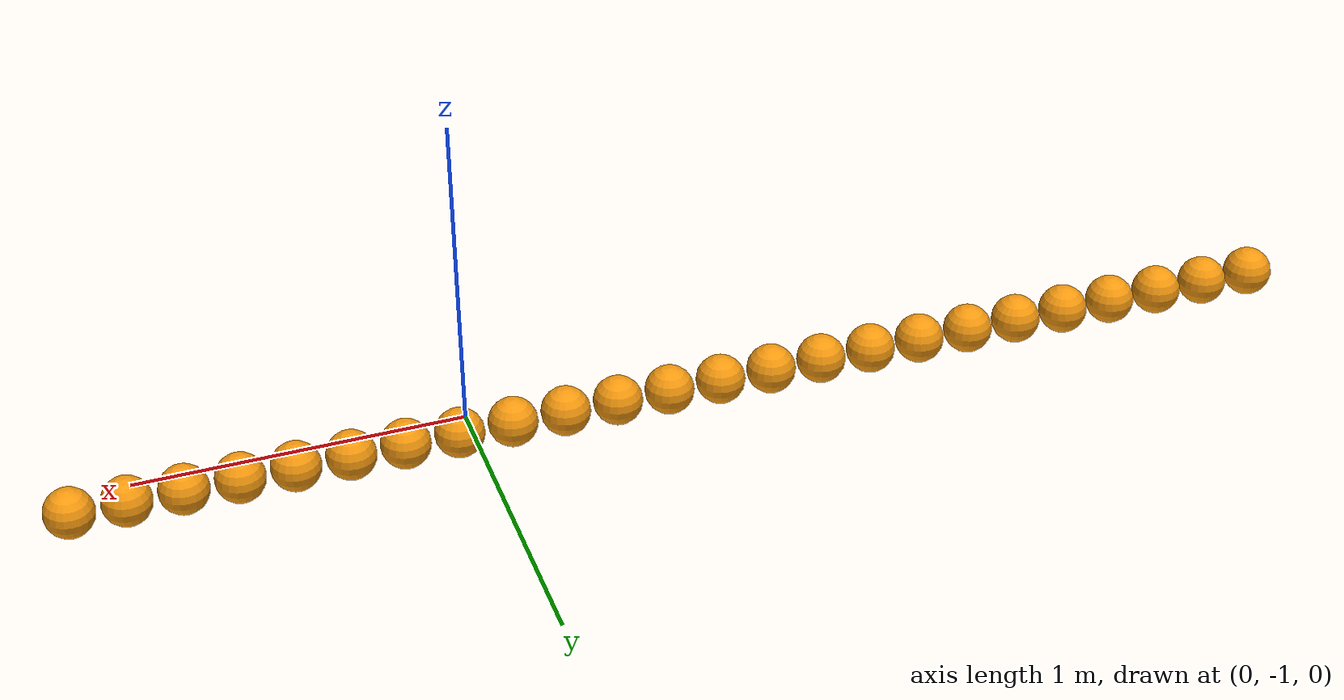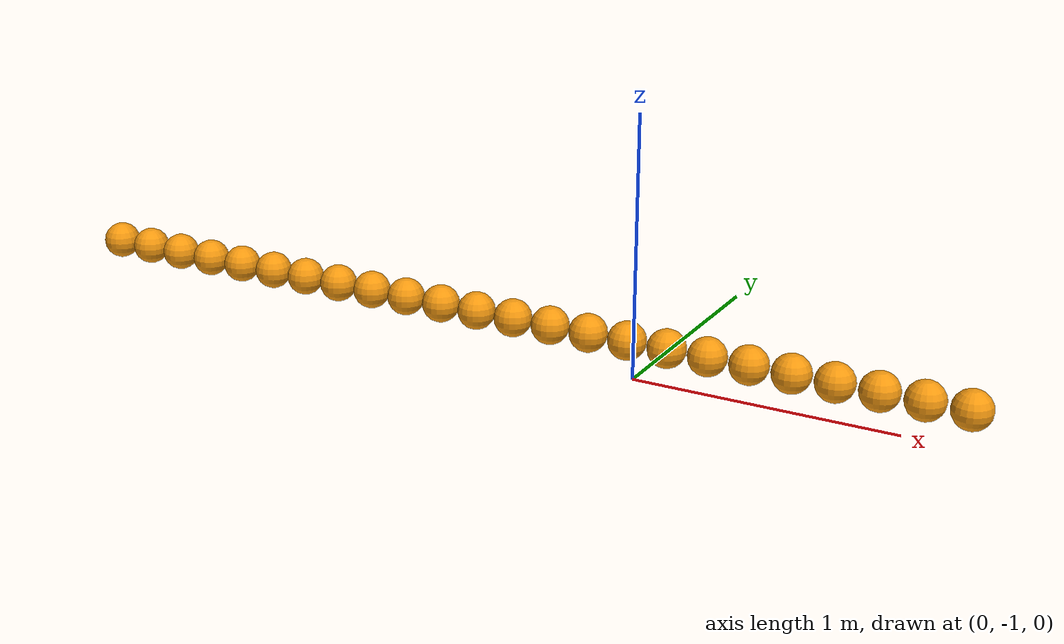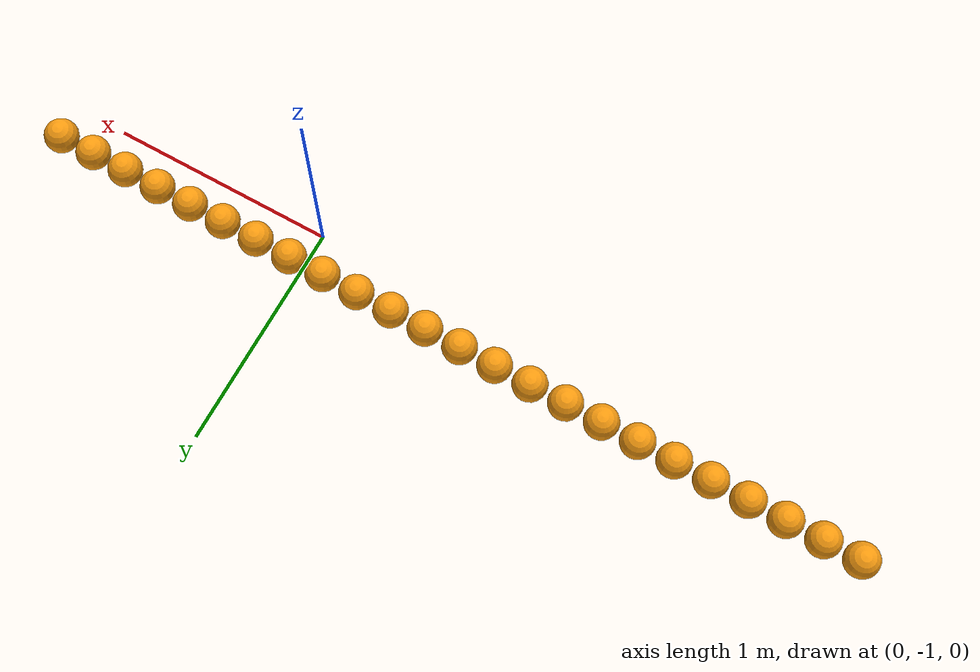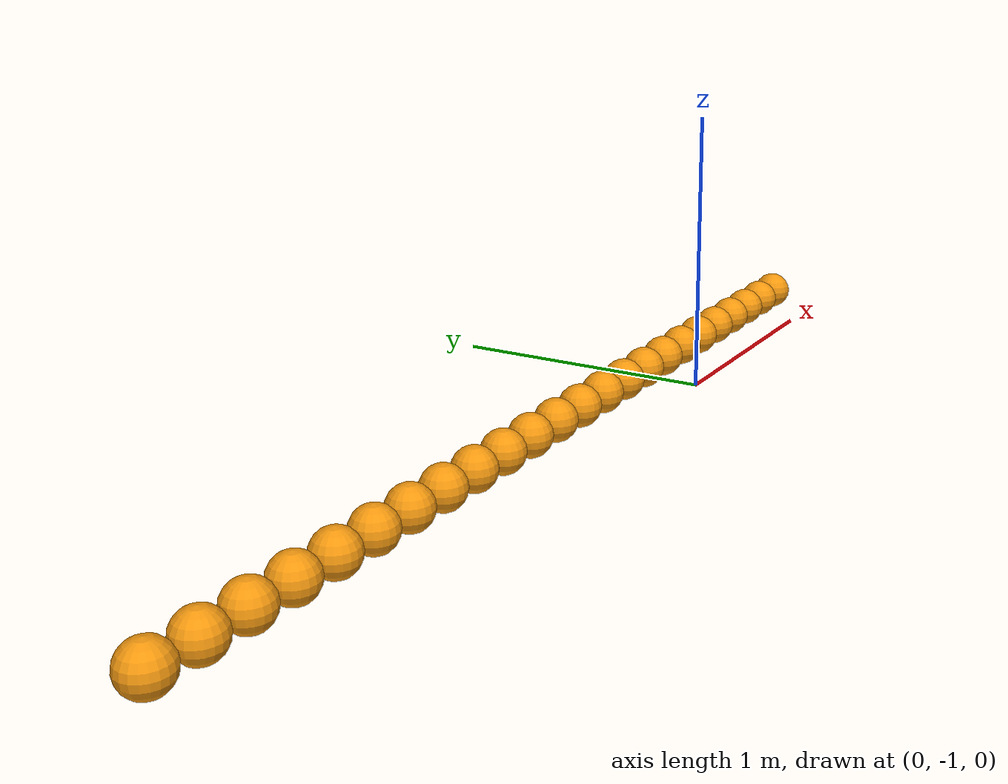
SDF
<?xml version="1.0" ?>
<sdf version="1.11">
  <world name="mars">
    <physics name="250hz" type="ignored">
      <max_step_size>0.004</max_step_size><real_time_factor>0</real_time_factor>
    </physics>
    <plugin filename="gz-sim-physics-system" name="gz::sim::systems::Physics"/>
    <plugin filename="gz-sim-scene-broadcaster-system" name="gz::sim::systems::SceneBroadcaster"/>
    <gravity>0 0 -9.8</gravity>
    <light type="directional" name="sun"><pose>0 0 10 0 0 0</pose>
      <diffuse>0.8 0.8 0.8 1</diffuse><direction>-0.5 0.1 -0.9</direction></light>
    <model name="ground_plane"><static>true</static><link name="link">
      <collision name="collision"><geometry><plane><normal>0 0 1</normal></plane></geometry>
      <surface><friction><ode><mu>0.9</mu><mu2>0.9</mu2></ode></friction></surface></collision>
    </link></model>
    <include><uri>model://fuel</uri><name>fuel_0</name><pose>-2.5340 -0.8340 0.0750 0 0 0</pose></include>
    <include><uri>model://fuel</uri><name>fuel_1</name><pose>-2.3720 -0.8340 0.0750 0 0 0</pose></include>
    <include><uri>model://fuel</uri><name>fuel_2</name><pose>-2.2100 -0.8340 0.0750 0 0 0</pose></include>
    <include><uri>model://fuel</uri><name>fuel_3</name><pose>-2.0480 -0.8340 0.0750 0 0 0</pose></include>
    <include><uri>model://fuel</uri><name>fuel_4</name><pose>-1.8860 -0.8340 0.0750 0 0 0</pose></include>
    <include><uri>model://fuel</uri><name>fuel_5</name><pose>-1.7240 -0.8340 0.0750 0 0 0</pose></include>
    <include><uri>model://fuel</uri><name>fuel_6</name><pose>-1.5620 -0.8340 0.0750 0 0 0</pose></include>
    <include><uri>model://fuel</uri><name>fuel_7</name><pose>-1.4000 -0.8340 0.0750 0 0 0</pose></include>
    <include><uri>model://fuel</uri><name>fuel_8</name><pose>-1.2380 -0.8340 0.0750 0 0 0</pose></include>
    <include><uri>model://fuel</uri><name>fuel_9</name><pose>-1.0760 -0.8340 0.0750 0 0 0</pose></include>
    <include><uri>model://fuel</uri><name>fuel_10</name><pose>-0.9140 -0.8340 0.0750 0 0 0</pose></include>
    <include><uri>model://fuel</uri><name>fuel_11</name><pose>-0.7520 -0.8340 0.0750 0 0 0</pose></include>
    <include><uri>model://fuel</uri><name>fuel_12</name><pose>-0.5900 -0.8340 0.0750 0 0 0</pose></include>
    <include><uri>model://fuel</uri><name>fuel_13</name><pose>-0.4280 -0.8340 0.0750 0 0 0</pose></include>
    <include><uri>model://fuel</uri><name>fuel_14</name><pose>-0.2660 -0.8340 0.0750 0 0 0</pose></include>
    <include><uri>model://fuel</uri><name>fuel_15</name><pose>-0.1040 -0.8340 0.0750 0 0 0</pose></include>
    <include><uri>model://fuel</uri><name>fuel_16</name><pose>0.0580 -0.8340 0.0750 0 0 0</pose></include>
    <include><uri>model://fuel</uri><name>fuel_17</name><pose>0.2200 -0.8340 0.0750 0 0 0</pose></include>
    <include><uri>model://fuel</uri><name>fuel_18</name><pose>0.3820 -0.8340 0.0750 0 0 0</pose></include>
    <include><uri>model://fuel</uri><name>fuel_19</name><pose>0.5440 -0.8340 0.0750 0 0 0</pose></include>
    <include><uri>model://fuel</uri><name>fuel_20</name><pose>0.7060 -0.8340 0.0750 0 0 0</pose></include>
    <include><uri>model://fuel</uri><name>fuel_21</name><pose>0.8680 -0.8340 0.0750 0 0 0</pose></include>
    <include><uri>model://fuel</uri><name>fuel_22</name><pose>1.0300 -0.8340 0.0750 0 0 0</pose></include>
    <include><uri>model://fuel</uri><name>fuel_23</name><pose>1.1920 -0.8340 0.0750 0 0 0</pose></include>
  </world>
</sdf>

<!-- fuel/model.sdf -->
<sdf version="1.11">
  <model name="fuel">
    <link name="link">

      <inertial>
        <mass>0.215</mass>
        <inertia>
          <ixx>4.8375e-4</ixx><ixy>0</ixy><ixz>0</ixz>
          <iyy>4.8375e-4</iyy><iyz>0</iyz>
          <izz>4.8375e-4</izz>
        </inertia>
      </inertial>

      <collision name="collision">
        <geometry><sphere><radius>0.075</radius></sphere></geometry>
        <surface>
          <friction>
            <ode>
              <mu>0.85</mu>
              <mu2>0.85</mu2>
            </ode>
          </friction>
        </surface>
      </collision>

      <visual name="visual">
        <geometry><sphere><radius>0.075</radius></sphere></geometry>
        <material>
          <ambient>0.38 0.24 0.02 1</ambient>
          <diffuse>0.956 0.597 0.056 1</diffuse>
          <specular>0.05 0.05 0.05 1</specular>
        </material>
      </visual>

    </link>
  </model>
</sdf>
